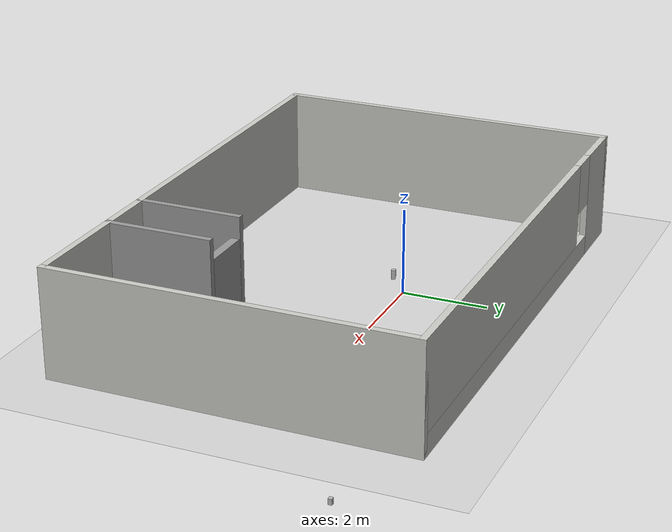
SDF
<sdf version="1.6">
 <world name="default">
  <light name="sun" type="directional">
   <pose>0 0 10 0 -0 0</pose>
   <diffuse>0.8 0.8 0.8 1</diffuse>
   <specular>0.2 0.2 0.2 1</specular>
   <attenuation>
    <range>1000</range>
    <constant>0.9</constant>
    <linear>0.01</linear>
    <quadratic>0.001</quadratic>
   </attenuation>
   <direction>-0.5 0.1 -0.9</direction>
  </light>
  <model name="ground_plane">
   <static>1</static>
   <link name="link">
    <collision name="collision">
     <geometry><plane><normal>0 0 1</normal><size>100 100</size></plane></geometry>
     <surface><friction><ode><mu>100</mu><mu2>50</mu2></ode></friction></surface>
    </collision>
    <visual name="visual">
     <cast_shadows>0</cast_shadows>
     <geometry><plane><normal>0 0 1</normal><size>100 100</size></plane></geometry>
     <material>
      <script><uri>file://media/materials/scripts/gazebo.material</uri><name>Gazebo/Grey</name></script>
     </material>
    </visual>
   </link>
  </model>
  <gravity>0 0 -9.8</gravity>
  <magnetic_field>6e-06 2.3e-05 -4.2e-05</magnetic_field>
  <atmosphere type="adiabatic"/>
  <physics name="default_physics" default="0" type="ode">
   <max_step_size>0.001</max_step_size>
   <real_time_factor>1</real_time_factor>
   <real_time_update_rate>1000</real_time_update_rate>
  </physics>
  <scene><ambient>0.4 0.4 0.4 1</ambient><background>0.7 0.7 0.7 1</background><shadows>1</shadows></scene>
  <audio><device>default</device></audio>
  <spherical_coordinates>
   <surface_model>EARTH_WGS84</surface_model>
   <latitude_deg>0</latitude_deg>
   <longitude_deg>0</longitude_deg>
   <elevation>0</elevation>
   <heading_deg>0</heading_deg>
  </spherical_coordinates>
  <model name="Personalized_house">
   <pose>0.808353 -0.98274 0 0 -0 0</pose>
   <link name="Door_0">
    <collision name="Door_0_Collision">
     <geometry><box><size>1.19733 0.2 2</size></box></geometry>
     <pose>0 0 1 0 -0 0</pose>
    </collision>
    <visual name="Door_0_Visual">
     <pose>0 0 1 0 -0 0</pose>
     <geometry><box><size>1.19733 0.2 2</size></box></geometry>
     <material>
      <script><uri>file://media/materials/scripts/gazebo.material</uri><name>Gazebo/Grey</name></script>
     </material>
    </visual>
    <pose>2.70071 -1.72252 0 0 -0 0</pose>
   </link>
   <link name="Wall_0">
    <collision name="Wall_0_Collision">
     <geometry><box><size>11.9365 0.15 2.5</size></box></geometry>
     <pose>0 0 1.25 0 -0 0</pose>
    </collision>
    <visual name="Wall_0_Visual">
     <pose>0 0 1.25 0 -0 0</pose>
     <geometry><box><size>11.9365 0.15 2.5</size></box></geometry>
     <material>
      <script><uri>file://media/materials/scripts/gazebo.material</uri><name>Gazebo/CeilingTiled</name></script>
      <ambient>0.996078 0.47451 0.0196078 1</ambient>
     </material>
     <meta><layer>0</layer></meta>
    </visual>
    <pose>-0.031769 -4.05 0 0 -0 3.14159</pose>
   </link>
   <link name="Wall_10">
    <collision name="Wall_10_Collision">
     <geometry><box><size>2.5 0.15 2.5</size></box></geometry>
     <pose>0 0 1.25 0 -0 0</pose>
    </collision>
    <visual name="Wall_10_Visual">
     <pose>0 0 1.25 0 -0 0</pose>
     <geometry><box><size>2.5 0.15 2.5</size></box></geometry>
     <material>
      <script><uri>file://media/materials/scripts/gazebo.material</uri><name>Gazebo/Grey</name></script>
      <ambient>1 1 1 1</ambient>
     </material>
     <meta><layer>0</layer></meta>
    </visual>
    <pose>3.38282 -2.85621 0 0 -0 1.5708</pose>
   </link>
   <link name="Wall_13">
    <collision name="Wall_13_Collision">
     <geometry><box><size>2.5 0.15 2.5</size></box></geometry>
     <pose>0 0 1.25 0 -0 0</pose>
    </collision>
    <visual name="Wall_13_Visual">
     <pose>0 0 1.25 0 -0 0</pose>
     <geometry><box><size>2.5 0.15 2.5</size></box></geometry>
     <material>
      <script><uri>file://media/materials/scripts/gazebo.material</uri><name>Gazebo/Grey</name></script>
      <ambient>1 1 1 1</ambient>
     </material>
     <meta><layer>0</layer></meta>
    </visual>
    <pose>2.01859 -2.86254 0 0 -0 -1.5708</pose>
   </link>
   <link name="Wall_5">
    <collision name="Wall_5_Collision">
     <geometry><box><size>8.25 0.15 2.5</size></box></geometry>
     <pose>0 0 1.25 0 -0 0</pose>
    </collision>
    <visual name="Wall_5_Visual">
     <pose>0 0 1.25 0 -0 0</pose>
     <geometry><box><size>8.25 0.15 2.5</size></box></geometry>
     <material>
      <script><uri>file://media/materials/scripts/gazebo.material</uri><name>Gazebo/CeilingTiled</name></script>
      <ambient>0.996078 0.47451 0.0196078 1</ambient>
     </material>
     <meta><layer>0</layer></meta>
    </visual>
    <pose>-5.925 -0 0 0 -0 1.5708</pose>
   </link>
   <link name="Wall_6">
    <pose>-0 4.05 0 0 -0 0</pose>
    <visual name="Wall_6_Visual_0">
     <pose>-5.26021 0 1.25 0 -0 0</pose>
     <geometry><box><size>1.47958 0.15 2.5</size></box></geometry>
     <material>
      <script><uri>file://media/materials/scripts/gazebo.material</uri><name>Gazebo/CeilingTiled</name></script>
      <ambient>0.996078 0.47451 0.0196078 1</ambient>
     </material>
     <meta><layer>0</layer></meta>
    </visual>
    <collision name="Wall_6_Collision_0">
     <geometry><box><size>1.47958 0.15 2.5</size></box></geometry>
     <pose>-5.26021 0 1.25 0 -0 0</pose>
    </collision>
    <visual name="Wall_6_Visual_1">
     <pose>0.739791 0 0.25 0 -0 0</pose>
     <geometry><box><size>10.5204 0.15 0.5</size></box></geometry>
     <material>
      <script><uri>file://media/materials/scripts/gazebo.material</uri><name>Gazebo/CeilingTiled</name></script>
      <ambient>0.996078 0.47451 0.0196078 1</ambient>
     </material>
     <meta><layer>0</layer></meta>
    </visual>
    <collision name="Wall_6_Collision_1">
     <geometry><box><size>10.5204 0.15 0.5</size></box></geometry>
     <pose>0.739791 0 0.25 0 -0 0</pose>
    </collision>
    <visual name="Wall_6_Visual_2">
     <pose>1.11356 0 1.5 0 -0 0</pose>
     <geometry><box><size>9.77289 0.15 2</size></box></geometry>
     <material>
      <script><uri>file://media/materials/scripts/gazebo.material</uri><name>Gazebo/CeilingTiled</name></script>
      <ambient>0.996078 0.47451 0.0196078 1</ambient>
     </material>
     <meta><layer>0</layer></meta>
    </visual>
    <collision name="Wall_6_Collision_2">
     <geometry><box><size>9.77289 0.15 2</size></box></geometry>
     <pose>1.11356 0 1.5 0 -0 0</pose>
    </collision>
    <visual name="Wall_6_Visual_3">
     <pose>-4.14665 0 1.9 0 -0 0</pose>
     <geometry><box><size>0.74753 0.15 1.2</size></box></geometry>
     <material>
      <script><uri>file://media/materials/scripts/gazebo.material</uri><name>Gazebo/CeilingTiled</name></script>
      <ambient>0.996078 0.47451 0.0196078 1</ambient>
     </material>
     <meta><layer>0</layer></meta>
    </visual>
    <collision name="Wall_6_Collision_3">
     <geometry><box><size>0.74753 0.15 1.2</size></box></geometry>
     <pose>-4.14665 0 1.9 0 -0 0</pose>
    </collision>
   </link>
   <link name="Wall_7">
    <collision name="Wall_7_Collision">
     <geometry><box><size>8.25 0.15 2.5</size></box></geometry>
     <pose>0 0 1.25 0 -0 0</pose>
    </collision>
    <visual name="Wall_7_Visual">
     <pose>0 0 1.25 0 -0 0</pose>
     <geometry><box><size>8.25 0.15 2.5</size></box></geometry>
     <material>
      <script><uri>file://media/materials/scripts/gazebo.material</uri><name>Gazebo/CeilingTiled</name></script>
      <ambient>0.996078 0.47451 0.0196078 1</ambient>
     </material>
     <meta><layer>0</layer></meta>
    </visual>
    <pose>5.925 -0 0 0 -0 -1.5708</pose>
   </link>
   <static>1</static>
  </model>
  <model name="bookshelf">
   <static>1</static>
   <link name="link">
    <inertial><mass>1</mass></inertial>
    <collision name="back">
     <pose>0 0.005 0.6 0 -0 0</pose>
     <geometry><box><size>0.9 0.01 1.2</size></box></geometry>
    </collision>
    <visual name="visual1">
     <pose>0 0.005 0.6 0 -0 0</pose>
     <geometry><box><size>0.9 0.01 1.2</size></box></geometry>
     <material>
      <script><uri>file://media/materials/scripts/gazebo.material</uri><name>Gazebo/Wood</name></script>
     </material>
    </visual>
    <collision name="left_side">
     <pose>0.45 -0.195 0.6 0 -0 0</pose>
     <geometry><box><size>0.02 0.4 1.2</size></box></geometry>
    </collision>
    <visual name="visual2">
     <pose>0.45 -0.195 0.6 0 -0 0</pose>
     <geometry><box><size>0.02 0.4 1.2</size></box></geometry>
     <material>
      <script><uri>file://media/materials/scripts/gazebo.material</uri><name>Gazebo/Wood</name></script>
     </material>
    </visual>
    <collision name="right_side">
     <pose>-0.45 -0.195 0.6 0 -0 0</pose>
     <geometry><box><size>0.02 0.4 1.2</size></box></geometry>
    </collision>
    <visual name="visual3">
     <pose>-0.45 -0.195 0.6 0 -0 0</pose>
     <geometry><box><size>0.02 0.4 1.2</size></box></geometry>
     <material>
      <script><uri>file://media/materials/scripts/gazebo.material</uri><name>Gazebo/Wood</name></script>
     </material>
    </visual>
    <collision name="bottom">
     <pose>0 -0.195 0.03 0 -0 0</pose>
     <geometry><box><size>0.88 0.4 0.06</size></box></geometry>
    </collision>
    <visual name="visual4">
     <pose>0 -0.195 0.03 0 -0 0</pose>
     <geometry><box><size>0.88 0.4 0.06</size></box></geometry>
     <material>
      <script><uri>file://media/materials/scripts/gazebo.material</uri><name>Gazebo/Wood</name></script>
     </material>
    </visual>
    <collision name="top">
     <pose>0 -0.195 1.19 0 -0 0</pose>
     <geometry><box><size>0.88 0.4 0.02</size></box></geometry>
    </collision>
    <visual name="visual5">
     <pose>0 -0.195 1.19 0 -0 0</pose>
     <geometry><box><size>0.88 0.4 0.02</size></box></geometry>
     <material>
      <script><uri>file://media/materials/scripts/gazebo.material</uri><name>Gazebo/Wood</name></script>
     </material>
    </visual>
    <collision name="low_shelf">
     <pose>0 -0.195 0.43 0 -0 0</pose>
     <geometry><box><size>0.88 0.4 0.02</size></box></geometry>
    </collision>
    <visual name="visual6">
     <pose>0 -0.195 0.43 0 -0 0</pose>
     <geometry><box><size>0.88 0.4 0.02</size></box></geometry>
     <material>
      <script><uri>file://media/materials/scripts/gazebo.material</uri><name>Gazebo/Wood</name></script>
     </material>
    </visual>
    <collision name="high_shelf">
     <pose>0 -0.195 0.8 0 -0 0</pose>
     <geometry><box><size>0.88 0.4 0.02</size></box></geometry>
    </collision>
    <visual name="visual7">
     <pose>0 -0.195 0.8 0 -0 0</pose>
     <geometry><box><size>0.88 0.4 0.02</size></box></geometry>
     <material>
      <script><uri>file://media/materials/scripts/gazebo.material</uri><name>Gazebo/Wood</name></script>
     </material>
    </visual>
   </link>
   <pose>6.53226 -2.0343 0 0 0 -1.58582</pose>
  </model>
  <model name="beer">
   <link name="link">
    <pose>0 0 0.115 0 -0 0</pose>
    <inertial>
     <mass>0.39</mass>
     <inertia><ixx>0.00058</ixx><ixy>0</ixy><ixz>0</ixz><iyy>0.00058</iyy><iyz>0</iyz><izz>0.00019</izz></inertia>
    </inertial>
    <collision name="collision">
     <geometry><cylinder><radius>0.055</radius><length>0.23</length></cylinder></geometry>
    </collision>
    <visual name="visual">
     <geometry><cylinder><radius>0.055</radius><length>0.23</length></cylinder></geometry>
     <material>
      <script>
       <uri>model://beer/materials/scripts</uri>
       <uri>model://beer/materials/textures</uri>
       <name>Beer/Diffuse</name>
      </script>
     </material>
    </visual>
   </link>
   <pose>-0.629485 -0.487486 -2e-06 1e-06 -0 -0.000153</pose>
  </model>
  <model name="cabinet">
   <static>1</static>
   <link name="cabinet_bottom_plate">
    <inertial>
     <pose>0 0 -1 0 -0 0</pose>
     <inertia><ixx>2.05</ixx><ixy>0</ixy><ixz>0</ixz><iyy>2.05</iyy><iyz>0</iyz><izz>2.05</izz></inertia>
     <mass>25</mass>
    </inertial>
    <collision name="cabinet_bottom_plate_geom">
     <pose>0 0 0.01 0 -0 0</pose>
     <geometry><box><size>0.45 0.45 0.02</size></box></geometry>
    </collision>
    <visual name="cabinet_bottom_plate_geom_visual">
     <pose>0 0 0.01 0 -0 0</pose>
     <geometry><box><size>0.45 0.45 0.02</size></box></geometry>
     <material>
      <script><uri>file://media/materials/scripts/gazebo.material</uri><name>Gazebo/Wood</name></script>
     </material>
    </visual>
    <collision name="cabinet_bottom_plate_geom_cabinet_back_plate">
     <pose>0.235 0 0.51 0 -0 0</pose>
     <geometry><box><size>0.02 0.45 1.02</size></box></geometry>
    </collision>
    <visual name="cabinet_bottom_plate_geom_cabinet_back_plate_visual">
     <pose>0.235 0 0.51 0 -0 0</pose>
     <geometry><box><size>0.02 0.45 1.02</size></box></geometry>
     <material>
      <script><uri>file://media/materials/scripts/gazebo.material</uri><name>Gazebo/Wood</name></script>
     </material>
    </visual>
    <collision name="cabinet_bottom_plate_geom_cabinet_left_plate">
     <pose>0 0.235 0.51 0 -0 0</pose>
     <geometry><box><size>0.45 0.02 1.02</size></box></geometry>
    </collision>
    <visual name="cabinet_bottom_plate_geom_cabinet_left_plate_visual">
     <pose>0 0.235 0.51 0 -0 0</pose>
     <geometry><box><size>0.45 0.02 1.02</size></box></geometry>
     <material>
      <script><uri>file://media/materials/scripts/gazebo.material</uri><name>Gazebo/Wood</name></script>
     </material>
    </visual>
    <collision name="cabinet_bottom_plate_geom_cabinet_middle_plate">
     <pose>0 0 0.51 0 -0 0</pose>
     <geometry><box><size>0.45 0.45 0.02</size></box></geometry>
    </collision>
    <visual name="cabinet_bottom_plate_geom_cabinet_middle_plate_visual">
     <pose>0 0 0.51 0 -0 0</pose>
     <geometry><box><size>0.45 0.45 0.02</size></box></geometry>
     <material>
      <script><uri>file://media/materials/scripts/gazebo.material</uri><name>Gazebo/Wood</name></script>
     </material>
    </visual>
    <collision name="cabinet_bottom_plate_geom_cabinet_right_plate">
     <pose>0 -0.235 0.51 0 -0 0</pose>
     <geometry><box><size>0.45 0.02 1.02</size></box></geometry>
    </collision>
    <visual name="cabinet_bottom_plate_geom_cabinet_right_plate_visual">
     <pose>0 -0.235 0.51 0 -0 0</pose>
     <geometry><box><size>0.45 0.02 1.02</size></box></geometry>
     <material>
      <script><uri>file://media/materials/scripts/gazebo.material</uri><name>Gazebo/Wood</name></script>
     </material>
    </visual>
    <collision name="cabinet_bottom_plate_geom_cabinet_top_plate">
     <pose>0 0 1.01 0 -0 0</pose>
     <geometry><box><size>0.45 0.45 0.02</size></box></geometry>
    </collision>
    <visual name="cabinet_bottom_plate_geom_cabinet_top_plate_visual">
     <pose>0 0 1.01 0 -0 0</pose>
     <geometry><box><size>0.45 0.45 0.02</size></box></geometry>
     <material>
      <script><uri>file://media/materials/scripts/gazebo.material</uri><name>Gazebo/Wood</name></script>
     </material>
    </visual>
   </link>
   <pose>6.35873 -0.943324 0 0 -0 0</pose>
  </model>
  <model name="tea_box">
   <link name="link">
    <pose>0 0 0.075 0 -0 0</pose>
    <visual name="visual">
     <geometry><box><size>0.1 0.1 0.15</size></box></geometry>
     <material>
      <script>
       <uri>model://tea_box/materials/scripts</uri>
       <uri>model://tea_box/materials/textures</uri>
       <name>tea_pat</name>
      </script>
     </material>
    </visual>
    <collision name="collision"><geometry><box><size>0.1 0.1 0.15</size></box></geometry></collision>
   </link>
   <static>1</static>
   <pose>4.69838 0.287748 -2.83095 0 -0 0</pose>
  </model>
 </world>
</sdf>
